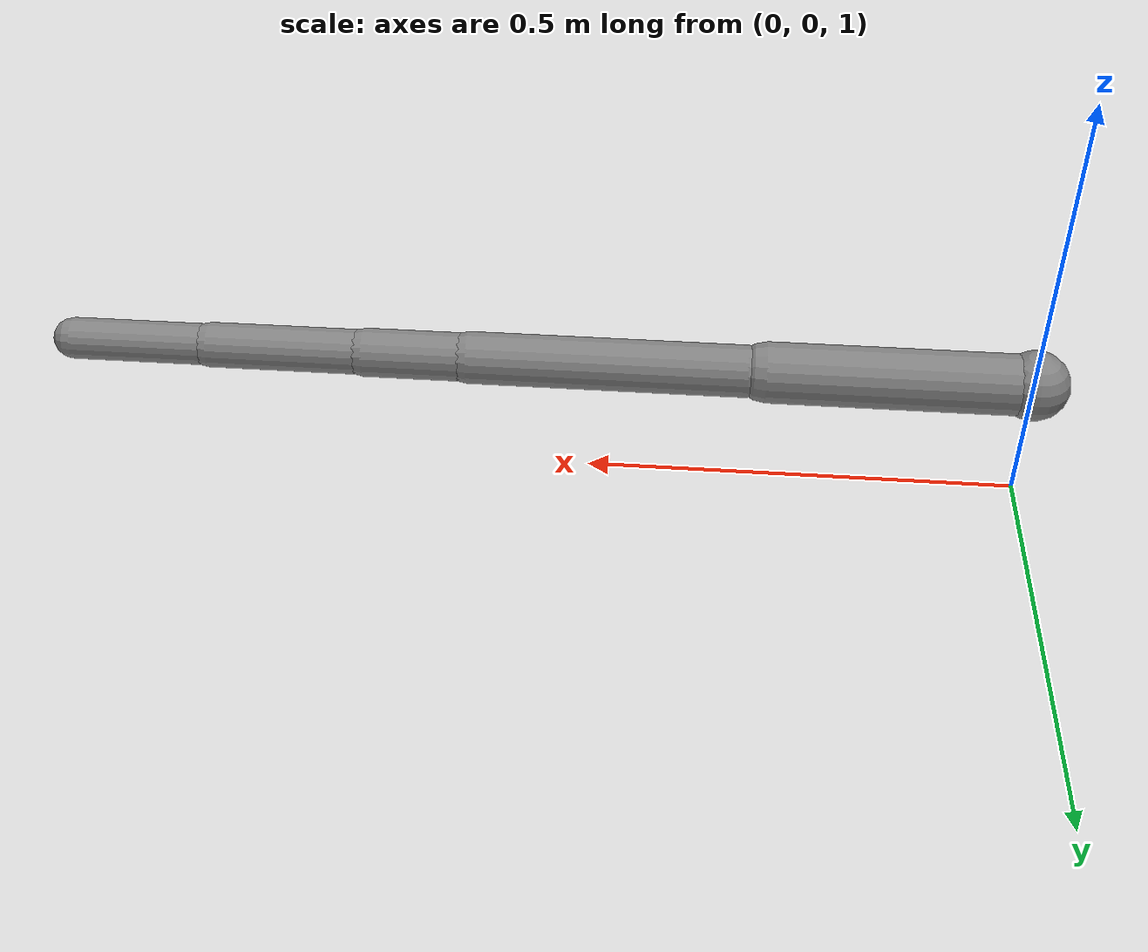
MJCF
<mujoco model="rehab_arm_minimal">
  <compiler angle="radian"/>
  <option timestep="0.002" gravity="0 0 -9.81"/>
  <worldbody>
    <body name="base" pos="0 0 1.15">
      <geom type="sphere" size="0.04" mass="0.5"/>
        <body name="shoulder_lift_body" pos="0 0 0">
          <joint name="shoulder_lift_joint" type="hinge" axis="0 1 0" range="-0.7 1.4" limited="true" damping="1.0"/>
          <geom type="capsule" fromto="0 0 0 0.3 0 0" size="0.035" mass="0.2"/>
            <body name="elbow_lift_body" pos="0.32 0 0">
              <joint name="elbow_lift_joint" type="hinge" axis="0 1 0" range="0.0 1.8" limited="true" damping="1.0"/>
              <geom type="capsule" fromto="0 0 0 0.32 0 0" size="0.03" mass="0.2"/>
                <body name="shoulder_abduction_body" pos="0.22 0 0">
                  <joint name="shoulder_abduction_joint" type="hinge" axis="0 0 1" range="-0.45 0.8" limited="true" damping="1.0"/>
                  <geom type="capsule" fromto="0 0 0 0.22 0 0" size="0.028" mass="0.2"/>
                    <body name="upper_arm_rotation_body" pos="0.2 0 0">
                      <joint name="upper_arm_rotation_joint" type="hinge" axis="1 0 0" range="-1.2 1.2" limited="true" damping="1.0"/>
                      <geom type="capsule" fromto="0 0 0 0.2 0 0" size="0.026" mass="0.2"/>
                        <body name="forearm_rotation_body" pos="0.18 0 0">
                          <joint name="forearm_rotation_joint" type="hinge" axis="1 0 0" range="-1.2 1.2" limited="true" damping="1.0"/>
                          <geom type="capsule" fromto="0 0 0 0.18 0 0" size="0.024" mass="0.2"/>
                        </body>
                    </body>
                </body>
            </body>
        </body>
    </body>
  </worldbody>
  <actuator>
    <position joint="shoulder_lift_joint" kp="35" kv="4" ctrlrange="-0.7 1.4"/>
    <position joint="elbow_lift_joint" kp="35" kv="4" ctrlrange="0.0 1.8"/>
    <position joint="shoulder_abduction_joint" kp="35" kv="4" ctrlrange="-0.45 0.8"/>
    <position joint="upper_arm_rotation_joint" kp="35" kv="4" ctrlrange="-1.2 1.2"/>
    <position joint="forearm_rotation_joint" kp="35" kv="4" ctrlrange="-1.2 1.2"/>
  </actuator>
</mujoco>
